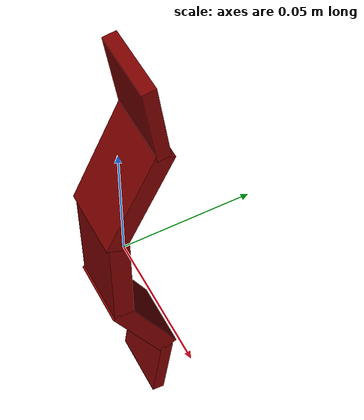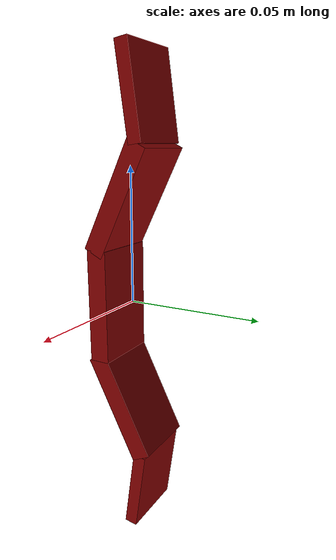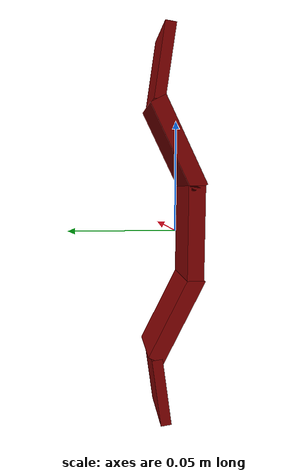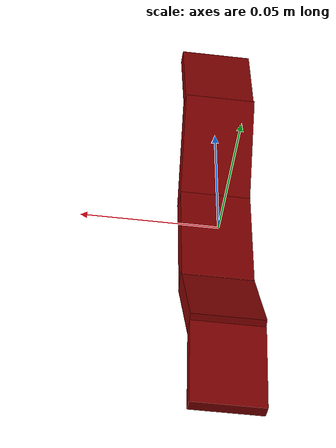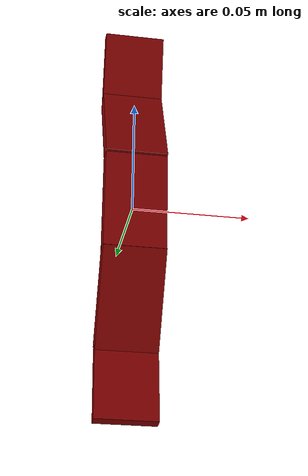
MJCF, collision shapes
<?xml version='1.0' encoding='UTF-8'?>
<mujoco model="model">
  <option timestep="0.002" gravity="0.0 0.0 -9.81"/>
  <compiler angle="radian"/>
  <asset>
    <mesh file="visuals/CabinetHandle030.obj" name="CabinetHandle030_vis"/>
    <texture file="visuals/T_BC001.png" name="tex" type="2d"/>
    <material name="mat" rgba="1 1 1 1.0" texture="tex" shininess="0.10000002384185791" specular="0.33333333333333337"/>
  </asset>
  <default>
    <default class="visual">
      <geom conaffinity="0" contype="0" group="1" type="mesh"/>
    </default>
    <default class="collision">
      <geom group="0" rgba="0.5 0 0 0.5" density="1.0" solref="0.004 1" solimp="0.998 0.998 0.001"/>
    </default>
    <default class="spawn">
      <geom group="0" rgba="1 1 1 0.5" contype="0" conaffinity="0"/>
      <site group="0" rgba="1 1 1 0.5"/>
    </default>
    <default class="region">
      <geom group="1" conaffinity="0" contype="0" rgba="0 1 0 0" mass="0"/>
    </default>
  </default>
  <worldbody>
    <body>
      <body name="object">
        <geom mesh="CabinetHandle030_vis" type="mesh" solimp="0.998 0.998 0.001" solref="0.001 1" friction="0.95 0.3 0.1" class="visual" material="mat"/>
        <geom type="box" pos="8.940696516468449e-10 -0.007082347758114338 -0.0004003117501270026" size="0.013027895241975784 0.0038087209686636925 0.021216489374637604" quat="1.0 0.0 0.0 0.0" class="collision"/>
        <geom type="box" pos="8.940696516468449e-10 0.0011402963427826762 -0.03923497349023819" size="0.013027895241975784 0.0038087209686636925 0.021216489374637604" quat="0.9737184047698975 0.22775524854660034 1.786026210184081e-17 -2.66923801083895e-18" class="collision"/>
        <geom type="box" pos="8.940696516468449e-10 0.007703626528382301 -0.07363760471343994" size="0.013027895241975784 0.002470612060278654 0.015998290851712227" quat="0.9975340962409973 -0.07018361240625381 -4.7623160218674605e-17 7.117329169744105e-18" class="collision"/>
        <geom type="box" pos="8.940696516468449e-10 0.0010489961132407188 0.0387575663626194" size="0.013027895241975784 0.0038087209686636925 0.021216489374637604" quat="4.2174252712356974e-07 9.864666594694427e-08 -0.22775524854660034 -0.9737184047698975" class="collision"/>
        <geom type="box" pos="2.544043642416227e-09 0.0076123252511024475 0.07316020131111145" size="0.013027895241975784 0.002470612060278654 0.015998290851712227" quat="4.32057731813984e-07 -3.0398329187164563e-08 0.07018361240625381 -0.9975340962409973" class="collision"/>
        <geom class="region" name="reg_main" type="box" pos="2.3283064365386963e-10 0.0 0.0" size="0.013326871976256371 0.011897045023739339 0.08993510699272156"/>
      </body>
    </body>
  </worldbody>
  <actuator/>
</mujoco>
